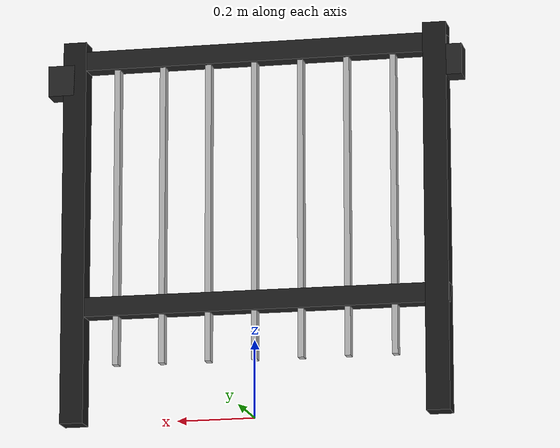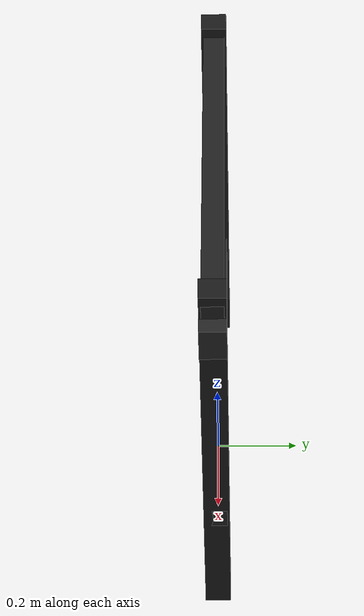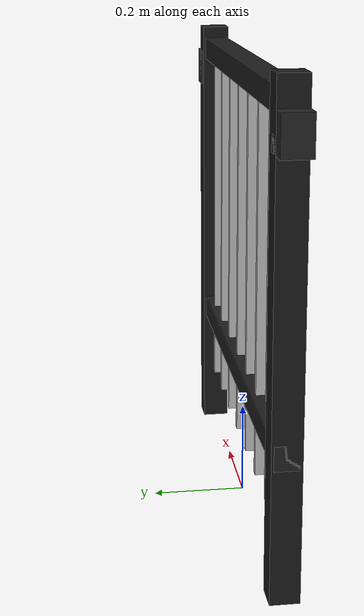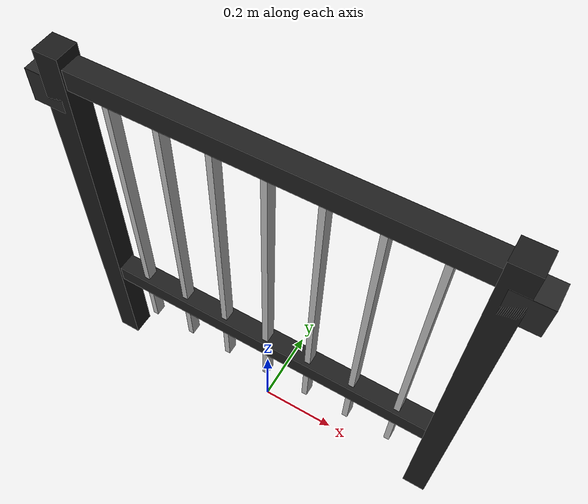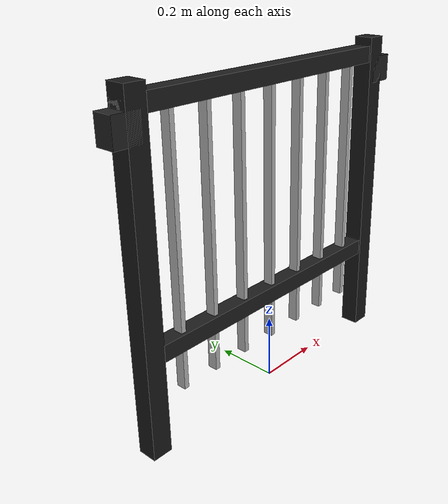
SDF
<?xml version="1.0"?>
<sdf version="1.7">
  <model name="guardrail_panel_1m">
    <static>true</static>
    <link name="guardrail_link">
      <pose>0 0 0 0 0 0</pose>

      <collision name="col_top_rail">
        <pose>0 0 0.95 0 0 0</pose>
        <geometry>
          <box><size>1.00 0.05 0.05</size></box>
        </geometry>
        <surface>
          <friction>
            <ode>
              <mu>1.2</mu>
              <mu2>1.2</mu2>
            </ode>
          </friction>
          <contact>
            <ode>
              <kp>1000000</kp>
              <kd>10</kd>
            </ode>
          </contact>
        </surface>
      </collision>

      <collision name="col_bottom_rail">
        <pose>0 0 0.30 0 0 0</pose>
        <geometry>
          <box><size>1.00 0.05 0.05</size></box>
        </geometry>
      </collision>

      <collision name="col_post_left">
        <pose>-0.47 0 0.50 0 0 0</pose>
        <geometry>
          <box><size>0.06 0.06 1.00</size></box>
        </geometry>
      </collision>

      <collision name="col_post_right">
        <pose>0.47 0 0.50 0 0 0</pose>
        <geometry>
          <box><size>0.06 0.06 1.00</size></box>
        </geometry>
      </collision>

      <visual name="vis_top_rail">
        <pose>0 0 0.95 0 0 0</pose>
        <geometry><box><size>1.00 0.05 0.05</size></box></geometry>
        <material>
          <ambient>0.06 0.06 0.06 1</ambient>
          <diffuse>0.12 0.12 0.12 1</diffuse>
          <specular>0.20 0.20 0.20 1</specular>
        </material>
      </visual>

      <visual name="vis_bottom_rail">
        <pose>0 0 0.30 0 0 0</pose>
        <geometry><box><size>1.00 0.05 0.05</size></box></geometry>
        <material>
          <ambient>0.06 0.06 0.06 1</ambient>
          <diffuse>0.12 0.12 0.12 1</diffuse>
          <specular>0.20 0.20 0.20 1</specular>
        </material>
      </visual>

      <visual name="vis_post_left">
        <pose>-0.47 0 0.50 0 0 0</pose>
        <geometry><box><size>0.06 0.06 1.00</size></box></geometry>
        <material>
          <ambient>0.05 0.05 0.05 1</ambient>
          <diffuse>0.10 0.10 0.10 1</diffuse>
        </material>
      </visual>

      <visual name="vis_post_right">
        <pose>0.47 0 0.50 0 0 0</pose>
        <geometry><box><size>0.06 0.06 1.00</size></box></geometry>
        <material>
          <ambient>0.05 0.05 0.05 1</ambient>
          <diffuse>0.10 0.10 0.10 1</diffuse>
        </material>
      </visual>

      <visual name="vis_bar_01"><pose>-0.36 0 0.55 0 0 0</pose><geometry><box><size>0.015 0.03 0.80</size></box></geometry></visual>
      <visual name="vis_bar_02"><pose>-0.24 0 0.55 0 0 0</pose><geometry><box><size>0.015 0.03 0.80</size></box></geometry></visual>
      <visual name="vis_bar_03"><pose>-0.12 0 0.55 0 0 0</pose><geometry><box><size>0.015 0.03 0.80</size></box></geometry></visual>
      <visual name="vis_bar_04"><pose>0.00 0 0.55 0 0 0</pose><geometry><box><size>0.015 0.03 0.80</size></box></geometry></visual>
      <visual name="vis_bar_05"><pose>0.12 0 0.55 0 0 0</pose><geometry><box><size>0.015 0.03 0.80</size></box></geometry></visual>
      <visual name="vis_bar_06"><pose>0.24 0 0.55 0 0 0</pose><geometry><box><size>0.015 0.03 0.80</size></box></geometry></visual>
      <visual name="vis_bar_07"><pose>0.36 0 0.55 0 0 0</pose><geometry><box><size>0.015 0.03 0.80</size></box></geometry></visual>
      <visual name="vis_bar_08"><pose>0.48 0 0.55 0 0 0</pose><geometry><box><size>0.015 0.03 0.80</size></box></geometry></visual>

      <visual name="vis_joint_left">
        <pose>-0.50 0 0.90 0 0 0</pose>
        <geometry><box><size>0.08 0.06 0.08</size></box></geometry>
        <material><diffuse>0.14 0.14 0.14 1</diffuse></material>
      </visual>

      <visual name="vis_joint_right">
        <pose>0.50 0 0.90 0 0 0</pose>
        <geometry><box><size>0.08 0.06 0.08</size></box></geometry>
        <material><diffuse>0.14 0.14 0.14 1</diffuse></material>
      </visual>

      <self_collide>false</self_collide>
      <enable_wind>false</enable_wind>
      <kinematic>false</kinematic>
    </link>
  </model>
</sdf>
